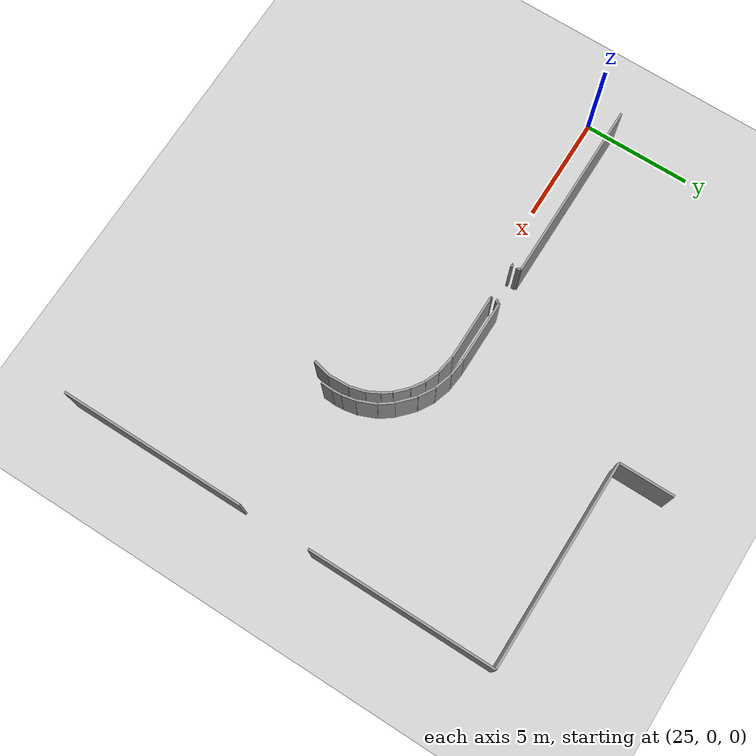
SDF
<sdf version="1.6">
 <world name="default">
  <model name="ground_plane">
   <static>1</static>
   <link name="link">
    <collision name="collision">
     <geometry><plane><normal>0 0 1</normal><size>100 100</size></plane></geometry>
     <surface><friction><ode><mu>100</mu><mu2>50</mu2></ode></friction></surface>
    </collision>
    <visual name="visual">
     <cast_shadows>0</cast_shadows>
     <geometry><plane><normal>0 0 1</normal><size>100 100</size></plane></geometry>
     <material>
      <script><uri>file://media/materials/scripts/gazebo.material</uri><name>Gazebo/Grey</name></script>
     </material>
    </visual>
   </link>
  </model>
  <model name="0510032258_A_40_1_105">
   <static>1</static>
   <link name="Wall_198">
    <collision name="Wall_198_Collision">
     <geometry><box><size>0.0396381746112 0.1 2.5</size></box></geometry>
     <pose>0.0198190873056 0 1.25 0 0 0</pose>
    </collision>
    <visual name="Wall_198_Visual">
     <pose>0.0198190873056 0 1.25 0 0 0</pose>
     <geometry><box><size>0.0396381746112 0.1 2.5</size></box></geometry>
     <material>
      <script><uri>file://media/materials/scripts/gazebo.material</uri><name>Gazebo/Grey</name></script>
      <ambient>1 1 1 1</ambient>
     </material>
    </visual>
    <pose>81.3173340787 -12.3962038825 0 0 0 1.57079632679</pose>
   </link>
   <link name="Wall_199">
    <collision name="Wall_199_Collision">
     <geometry><box><size>0.122852932209 0.1 2.5</size></box></geometry>
     <pose>0.0614264661043 0 1.25 0 0 0</pose>
    </collision>
    <visual name="Wall_199_Visual">
     <pose>0.0614264661043 0 1.25 0 0 0</pose>
     <geometry><box><size>0.122852932209 0.1 2.5</size></box></geometry>
     <material>
      <script><uri>file://media/materials/scripts/gazebo.material</uri><name>Gazebo/Grey</name></script>
      <ambient>1 1 1 1</ambient>
     </material>
    </visual>
    <pose>81.3173340787 -12.3565657079 0 0 0 0.0</pose>
   </link>
   <link name="Wall_200">
    <collision name="Wall_200_Collision">
     <geometry><box><size>0.0659365789206 0.1 2.5</size></box></geometry>
     <pose>0.0329682894603 0 1.25 0 0 0</pose>
    </collision>
    <visual name="Wall_200_Visual">
     <pose>0.0329682894603 0 1.25 0 0 0</pose>
     <geometry><box><size>0.0659365789206 0.1 2.5</size></box></geometry>
     <material>
      <script><uri>file://media/materials/scripts/gazebo.material</uri><name>Gazebo/Grey</name></script>
      <ambient>1 1 1 1</ambient>
     </material>
    </visual>
    <pose>82.9954771826 -12.3565657079 0 0 0 0.0</pose>
   </link>
   <link name="Wall_201">
    <collision name="Wall_201_Collision">
     <geometry><box><size>0.0228681776603 0.1 2.5</size></box></geometry>
     <pose>0.0114340888302 0 1.25 0 0 0</pose>
    </collision>
    <visual name="Wall_201_Visual">
     <pose>0.0114340888302 0 1.25 0 0 0</pose>
     <geometry><box><size>0.0228681776603 0.1 2.5</size></box></geometry>
     <material>
      <script><uri>file://media/materials/scripts/gazebo.material</uri><name>Gazebo/Grey</name></script>
      <ambient>1 1 1 1</ambient>
     </material>
    </visual>
    <pose>83.0614137616 -12.3565657079 0 0 0 -1.57079632679</pose>
   </link>
   <link name="Wall_202">
    <collision name="Wall_202_Collision">
     <geometry><box><size>3.04464376461 0.1 2.5</size></box></geometry>
     <pose>1.52232188231 0 1.25 0 0 0</pose>
    </collision>
    <visual name="Wall_202_Visual">
     <pose>1.52232188231 0 1.25 0 0 0</pose>
     <geometry><box><size>3.04464376461 0.1 2.5</size></box></geometry>
     <material>
      <script><uri>file://media/materials/scripts/gazebo.material</uri><name>Gazebo/Grey</name></script>
      <ambient>1 1 1 1</ambient>
     </material>
    </visual>
    <pose>83.0614137616 -12.3794338856 0 0 0 0.0</pose>
   </link>
   <link name="Wall_203">
    <collision name="Wall_203_Collision">
     <geometry><box><size>0.848187051584 0.1 2.5</size></box></geometry>
     <pose>0.424093525792 0 1.25 0 0 0</pose>
    </collision>
    <visual name="Wall_203_Visual">
     <pose>0.424093525792 0 1.25 0 0 0</pose>
     <geometry><box><size>0.848187051584 0.1 2.5</size></box></geometry>
     <material>
      <script><uri>file://media/materials/scripts/gazebo.material</uri><name>Gazebo/Grey</name></script>
      <ambient>1 1 1 1</ambient>
     </material>
    </visual>
    <pose>86.1060575262 -12.3794338856 0 0 0 -0.16369583431</pose>
   </link>
   <link name="Wall_204">
    <collision name="Wall_204_Collision">
     <geometry><box><size>0.665314799726 0.1 2.5</size></box></geometry>
     <pose>0.332657399863 0 1.25 0 0 0</pose>
    </collision>
    <visual name="Wall_204_Visual">
     <pose>0.332657399863 0 1.25 0 0 0</pose>
     <geometry><box><size>0.665314799726 0.1 2.5</size></box></geometry>
     <material>
      <script><uri>file://media/materials/scripts/gazebo.material</uri><name>Gazebo/Grey</name></script>
      <ambient>1 1 1 1</ambient>
     </material>
    </visual>
    <pose>86.9429057831 -12.517659315 0 0 0 -0.377031337024</pose>
   </link>
   <link name="Wall_205">
    <collision name="Wall_205_Collision">
     <geometry><box><size>0.669924329354 0.1 2.5</size></box></geometry>
     <pose>0.334962164677 0 1.25 0 0 0</pose>
    </collision>
    <visual name="Wall_205_Visual">
     <pose>0.334962164677 0 1.25 0 0 0</pose>
     <geometry><box><size>0.669924329354 0.1 2.5</size></box></geometry>
     <material>
      <script><uri>file://media/materials/scripts/gazebo.material</uri><name>Gazebo/Grey</name></script>
      <ambient>1 1 1 1</ambient>
     </material>
    </visual>
    <pose>87.5614899888 -12.7626029068 0 0 0 -0.571907202431</pose>
   </link>
   <link name="Wall_206">
    <collision name="Wall_206_Collision">
     <geometry><box><size>0.737215126246 0.1 2.5</size></box></geometry>
     <pose>0.368607563123 0 1.25 0 0 0</pose>
    </collision>
    <visual name="Wall_206_Visual">
     <pose>0.368607563123 0 1.25 0 0 0</pose>
     <geometry><box><size>0.737215126246 0.1 2.5</size></box></geometry>
     <material>
      <script><uri>file://media/materials/scripts/gazebo.material</uri><name>Gazebo/Grey</name></script>
      <ambient>1 1 1 1</ambient>
     </material>
    </visual>
    <pose>88.1248094319 -13.1251905681 0 0 0 -0.767240500448</pose>
   </link>
   <link name="Wall_207">
    <collision name="Wall_207_Collision">
     <geometry><box><size>0.49043041682 0.1 2.5</size></box></geometry>
     <pose>0.24521520841 0 1.25 0 0 0</pose>
    </collision>
    <visual name="Wall_207_Visual">
     <pose>0.24521520841 0 1.25 0 0 0</pose>
     <geometry><box><size>0.49043041682 0.1 2.5</size></box></geometry>
     <material>
      <script><uri>file://media/materials/scripts/gazebo.material</uri><name>Gazebo/Grey</name></script>
      <ambient>1 1 1 1</ambient>
     </material>
    </visual>
    <pose>88.655478199 -13.636929566 0 0 0 -0.968495638966</pose>
   </link>
   <link name="Wall_208">
    <collision name="Wall_208_Collision">
     <geometry><box><size>0.621674786323 0.1 2.5</size></box></geometry>
     <pose>0.310837393162 0 1.25 0 0 0</pose>
    </collision>
    <visual name="Wall_208_Visual">
     <pose>0.310837393162 0 1.25 0 0 0</pose>
     <geometry><box><size>0.621674786323 0.1 2.5</size></box></geometry>
     <material>
      <script><uri>file://media/materials/scripts/gazebo.material</uri><name>Gazebo/Grey</name></script>
      <ambient>1 1 1 1</ambient>
     </material>
    </visual>
    <pose>88.9333265576 -14.0410610834 0 0 0 -1.08448142427</pose>
   </link>
   <link name="Wall_209">
    <collision name="Wall_209_Collision">
     <geometry><box><size>0.724701763586 0.1 2.5</size></box></geometry>
     <pose>0.362350881793 0 1.25 0 0 0</pose>
    </collision>
    <visual name="Wall_209_Visual">
     <pose>0.362350881793 0 1.25 0 0 0</pose>
     <geometry><box><size>0.724701763586 0.1 2.5</size></box></geometry>
     <material>
      <script><uri>file://media/materials/scripts/gazebo.material</uri><name>Gazebo/Grey</name></script>
      <ambient>1 1 1 1</ambient>
     </material>
    </visual>
    <pose>89.2238794593 -14.5906596199 0 0 0 -1.31523042426</pose>
   </link>
   <link name="Wall_210">
    <collision name="Wall_210_Collision">
     <geometry><box><size>0.967048927874 0.1 2.5</size></box></geometry>
     <pose>0.483524463937 0 1.25 0 0 0</pose>
    </collision>
    <visual name="Wall_210_Visual">
     <pose>0.483524463937 0 1.25 0 0 0</pose>
     <geometry><box><size>0.967048927874 0.1 2.5</size></box></geometry>
     <material>
      <script><uri>file://media/materials/scripts/gazebo.material</uri><name>Gazebo/Grey</name></script>
      <ambient>1 1 1 1</ambient>
     </material>
    </visual>
    <pose>89.4070789714 -15.291823356 0 0 0 -1.53163676072</pose>
   </link>
   <link name="Wall_211">
    <collision name="Wall_211_Collision">
     <geometry><box><size>0.818169678559 0.1 2.5</size></box></geometry>
     <pose>0.409084839279 0 1.25 0 0 0</pose>
    </collision>
    <visual name="Wall_211_Visual">
     <pose>0.409084839279 0 1.25 0 0 0</pose>
     <geometry><box><size>0.818169678559 0.1 2.5</size></box></geometry>
     <material>
      <script><uri>file://media/materials/scripts/gazebo.material</uri><name>Gazebo/Grey</name></script>
      <ambient>1 1 1 1</ambient>
     </material>
    </visual>
    <pose>89.44493851 -16.2581309076 0 0 0 -1.80443880273</pose>
   </link>
   <link name="Wall_239">
    <collision name="Wall_239_Collision">
     <geometry><box><size>2.54789612766 0.1 2.5</size></box></geometry>
     <pose>1.27394806383 0 1.25 0 0 0</pose>
    </collision>
    <visual name="Wall_239_Visual">
     <pose>1.27394806383 0 1.25 0 0 0</pose>
     <geometry><box><size>2.54789612766 0.1 2.5</size></box></geometry>
     <material>
      <script><uri>file://media/materials/scripts/gazebo.material</uri><name>Gazebo/Grey</name></script>
      <ambient>1 1 1 1</ambient>
     </material>
    </visual>
    <pose>86.2571145442 -1.86401057018 0 0 0 -1.57079632679</pose>
   </link>
   <link name="Wall_240">
    <collision name="Wall_240_Collision">
     <geometry><box><size>9.5442880374 0.1 2.5</size></box></geometry>
     <pose>4.7721440187 0 1.25 0 0 0</pose>
    </collision>
    <visual name="Wall_240_Visual">
     <pose>4.7721440187 0 1.25 0 0 0</pose>
     <geometry><box><size>9.5442880374 0.1 2.5</size></box></geometry>
     <material>
      <script><uri>file://media/materials/scripts/gazebo.material</uri><name>Gazebo/Grey</name></script>
      <ambient>1 1 1 1</ambient>
     </material>
    </visual>
    <pose>86.2571145442 -4.41190669784 0 0 0 0.0</pose>
   </link>
   <link name="Wall_241">
    <collision name="Wall_241_Collision">
     <geometry><box><size>8.63731070231 0.1 2.5</size></box></geometry>
     <pose>4.31865535115 0 1.25 0 0 0</pose>
    </collision>
    <visual name="Wall_241_Visual">
     <pose>4.31865535115 0 1.25 0 0 0</pose>
     <geometry><box><size>8.63731070231 0.1 2.5</size></box></geometry>
     <material>
      <script><uri>file://media/materials/scripts/gazebo.material</uri><name>Gazebo/Grey</name></script>
      <ambient>1 1 1 1</ambient>
     </material>
    </visual>
    <pose>95.8014025816 -4.41190669784 0 0 0 -1.57079632679</pose>
   </link>
   <link name="Wall_242">
    <collision name="Wall_242_Collision">
     <geometry><box><size>8.62066775079 0.1 2.5</size></box></geometry>
     <pose>4.31033387539 0 1.25 0 0 0</pose>
    </collision>
    <visual name="Wall_242_Visual">
     <pose>4.31033387539 0 1.25 0 0 0</pose>
     <geometry><box><size>8.62066775079 0.1 2.5</size></box></geometry>
     <material>
      <script><uri>file://media/materials/scripts/gazebo.material</uri><name>Gazebo/Grey</name></script>
      <ambient>1 1 1 1</ambient>
     </material>
    </visual>
    <pose>95.8014025816 -16.306535217 0 0 0 -1.57079632679</pose>
   </link>
   <link name="Wall_263">
    <collision name="Wall_263_Collision">
     <geometry><box><size>0.562883081845 0.1 2.5</size></box></geometry>
     <pose>0.281441540922 0 1.25 0 0 0</pose>
    </collision>
    <visual name="Wall_263_Visual">
     <pose>0.281441540922 0 1.25 0 0 0</pose>
     <geometry><box><size>0.562883081845 0.1 2.5</size></box></geometry>
     <material>
      <script><uri>file://media/materials/scripts/gazebo.material</uri><name>Gazebo/Grey</name></script>
      <ambient>1 1 1 1</ambient>
     </material>
    </visual>
    <pose>89.8572009351 -16.3238133957 0 0 0 1.52066886365</pose>
   </link>
   <link name="Wall_264">
    <collision name="Wall_264_Collision">
     <geometry><box><size>0.415507575344 0.1 2.5</size></box></geometry>
     <pose>0.207753787672 0 1.25 0 0 0</pose>
    </collision>
    <visual name="Wall_264_Visual">
     <pose>0.207753787672 0 1.25 0 0 0</pose>
     <geometry><box><size>0.415507575344 0.1 2.5</size></box></geometry>
     <material>
      <script><uri>file://media/materials/scripts/gazebo.material</uri><name>Gazebo/Grey</name></script>
      <ambient>1 1 1 1</ambient>
     </material>
    </visual>
    <pose>89.8854050208 -15.7616373615 0 0 0 1.63872719235</pose>
   </link>
   <link name="Wall_265">
    <collision name="Wall_265_Collision">
     <geometry><box><size>0.62453147429 0.1 2.5</size></box></geometry>
     <pose>0.312265737145 0 1.25 0 0 0</pose>
    </collision>
    <visual name="Wall_265_Visual">
     <pose>0.312265737145 0 1.25 0 0 0</pose>
     <geometry><box><size>0.62453147429 0.1 2.5</size></box></geometry>
     <material>
      <script><uri>file://media/materials/scripts/gazebo.material</uri><name>Gazebo/Grey</name></script>
      <ambient>1 1 1 1</ambient>
     </material>
    </visual>
    <pose>89.8572009351 -15.3470881187 0 0 0 1.76009312097</pose>
   </link>
   <link name="Wall_266">
    <collision name="Wall_266_Collision">
     <geometry><box><size>0.896571275425 0.1 2.5</size></box></geometry>
     <pose>0.448285637712 0 1.25 0 0 0</pose>
    </collision>
    <visual name="Wall_266_Visual">
     <pose>0.448285637712 0 1.25 0 0 0</pose>
     <geometry><box><size>0.896571275425 0.1 2.5</size></box></geometry>
     <material>
      <script><uri>file://media/materials/scripts/gazebo.material</uri><name>Gazebo/Grey</name></script>
      <ambient>1 1 1 1</ambient>
     </material>
    </visual>
    <pose>89.739683911 -14.7337127757 0 0 0 1.9604861729</pose>
   </link>
   <link name="Wall_267">
    <collision name="Wall_267_Collision">
     <geometry><box><size>0.706628071625 0.1 2.5</size></box></geometry>
     <pose>0.353314035812 0 1.25 0 0 0</pose>
    </collision>
    <visual name="Wall_267_Visual">
     <pose>0.353314035812 0 1.25 0 0 0</pose>
     <geometry><box><size>0.706628071625 0.1 2.5</size></box></geometry>
     <material>
      <script><uri>file://media/materials/scripts/gazebo.material</uri><name>Gazebo/Grey</name></script>
      <ambient>1 1 1 1</ambient>
     </material>
    </visual>
    <pose>89.3990751093 -13.9043601992 0 0 0 2.21627513887</pose>
   </link>
   <link name="Wall_268">
    <collision name="Wall_268_Collision">
     <geometry><box><size>0.964578087495 0.1 2.5</size></box></geometry>
     <pose>0.482289043748 0 1.25 0 0 0</pose>
    </collision>
    <visual name="Wall_268_Visual">
     <pose>0.482289043748 0 1.25 0 0 0</pose>
     <geometry><box><size>0.964578087495 0.1 2.5</size></box></geometry>
     <material>
      <script><uri>file://media/materials/scripts/gazebo.material</uri><name>Gazebo/Grey</name></script>
      <ambient>1 1 1 1</ambient>
     </material>
    </visual>
    <pose>88.9739810956 -13.3398973473 0 0 0 2.39541381384</pose>
   </link>
   <link name="Wall_269">
    <collision name="Wall_269_Collision">
     <geometry><box><size>0.809292481693 0.1 2.5</size></box></geometry>
     <pose>0.404646240846 0 1.25 0 0 0</pose>
    </collision>
    <visual name="Wall_269_Visual">
     <pose>0.404646240846 0 1.25 0 0 0</pose>
     <geometry><box><size>0.809292481693 0.1 2.5</size></box></geometry>
     <material>
      <script><uri>file://media/materials/scripts/gazebo.material</uri><name>Gazebo/Grey</name></script>
      <ambient>1 1 1 1</ambient>
     </material>
    </visual>
    <pose>88.2657028153 -12.6851051936 0 0 0 2.61091922349</pose>
   </link>
   <link name="Wall_270">
    <collision name="Wall_270_Collision">
     <geometry><box><size>0.826786338416 0.1 2.5</size></box></geometry>
     <pose>0.413393169208 0 1.25 0 0 0</pose>
    </collision>
    <visual name="Wall_270_Visual">
     <pose>0.413393169208 0 1.25 0 0 0</pose>
     <geometry><box><size>0.826786338416 0.1 2.5</size></box></geometry>
     <material>
      <script><uri>file://media/materials/scripts/gazebo.material</uri><name>Gazebo/Grey</name></script>
      <ambient>1 1 1 1</ambient>
     </material>
    </visual>
    <pose>87.567715215 -12.2755107226 0 0 0 2.8353436032</pose>
   </link>
   <link name="Wall_271">
    <collision name="Wall_271_Collision">
     <geometry><box><size>0.825198737661 0.1 2.5</size></box></geometry>
     <pose>0.412599368831 0 1.25 0 0 0</pose>
    </collision>
    <visual name="Wall_271_Visual">
     <pose>0.412599368831 0 1.25 0 0 0</pose>
     <geometry><box><size>0.825198737661 0.1 2.5</size></box></geometry>
     <material>
      <script><uri>file://media/materials/scripts/gazebo.material</uri><name>Gazebo/Grey</name></script>
      <ambient>1 1 1 1</ambient>
     </material>
    </visual>
    <pose>86.7793983128 -12.0262475861 0 0 0 3.04181676578</pose>
   </link>
   <link name="Wall_272">
    <collision name="Wall_272_Collision">
     <geometry><box><size>2.88024697632 0.1 2.5</size></box></geometry>
     <pose>1.44012348816 0 1.25 0 0 0</pose>
    </collision>
    <visual name="Wall_272_Visual">
     <pose>1.44012348816 0 1.25 0 0 0</pose>
     <geometry><box><size>2.88024697632 0.1 2.5</size></box></geometry>
     <material>
      <script><uri>file://media/materials/scripts/gazebo.material</uri><name>Gazebo/Grey</name></script>
      <ambient>1 1 1 1</ambient>
     </material>
    </visual>
    <pose>85.9583036894 -11.944049192 0 0 0 3.14159265359</pose>
   </link>
   <link name="Wall_273">
    <collision name="Wall_273_Collision">
     <geometry><box><size>0.157917471288 0.1 2.5</size></box></geometry>
     <pose>0.0789587356439 0 1.25 0 0 0</pose>
    </collision>
    <visual name="Wall_273_Visual">
     <pose>0.0789587356439 0 1.25 0 0 0</pose>
     <geometry><box><size>0.157917471288 0.1 2.5</size></box></geometry>
     <material>
      <script><uri>file://media/materials/scripts/gazebo.material</uri><name>Gazebo/Grey</name></script>
      <ambient>1 1 1 1</ambient>
     </material>
    </visual>
    <pose>83.0780567131 -11.944049192 0 0 0 -1.57079632679</pose>
   </link>
   <link name="Wall_274">
    <collision name="Wall_274_Collision">
     <geometry><box><size>0.107353389572 0.1 2.5</size></box></geometry>
     <pose>0.053676694786 0 1.25 0 0 0</pose>
    </collision>
    <visual name="Wall_274_Visual">
     <pose>0.053676694786 0 1.25 0 0 0</pose>
     <geometry><box><size>0.107353389572 0.1 2.5</size></box></geometry>
     <material>
      <script><uri>file://media/materials/scripts/gazebo.material</uri><name>Gazebo/Grey</name></script>
      <ambient>1 1 1 1</ambient>
     </material>
    </visual>
    <pose>83.0780567131 -12.1019666633 0 0 0 3.14159265359</pose>
   </link>
   <link name="Wall_275">
    <collision name="Wall_275_Collision">
     <geometry><box><size>0.0627604431345 0.1 2.5</size></box></geometry>
     <pose>0.0313802215672 0 1.25 0 0 0</pose>
    </collision>
    <visual name="Wall_275_Visual">
     <pose>0.0313802215672 0 1.25 0 0 0</pose>
     <geometry><box><size>0.0627604431345 0.1 2.5</size></box></geometry>
     <material>
      <script><uri>file://media/materials/scripts/gazebo.material</uri><name>Gazebo/Grey</name></script>
      <ambient>1 1 1 1</ambient>
     </material>
    </visual>
    <pose>81.4099501982 -12.1019666633 0 0 0 3.14159265359</pose>
   </link>
   <link name="Wall_276">
    <collision name="Wall_276_Collision">
     <geometry><box><size>0.152200426873 0.1 2.5</size></box></geometry>
     <pose>0.0761002134363 0 1.25 0 0 0</pose>
    </collision>
    <visual name="Wall_276_Visual">
     <pose>0.0761002134363 0 1.25 0 0 0</pose>
     <geometry><box><size>0.152200426873 0.1 2.5</size></box></geometry>
     <material>
      <script><uri>file://media/materials/scripts/gazebo.material</uri><name>Gazebo/Grey</name></script>
      <ambient>1 1 1 1</ambient>
     </material>
    </visual>
    <pose>81.3471897551 -12.1019666633 0 0 0 1.57079632679</pose>
   </link>
   <link name="Wall_277">
    <collision name="Wall_277_Collision">
     <geometry><box><size>8.49451249241 0.1 2.5</size></box></geometry>
     <pose>4.24725624621 0 1.25 0 0 0</pose>
    </collision>
    <visual name="Wall_277_Visual">
     <pose>4.24725624621 0 1.25 0 0 0</pose>
     <geometry><box><size>8.49451249241 0.1 2.5</size></box></geometry>
     <material>
      <script><uri>file://media/materials/scripts/gazebo.material</uri><name>Gazebo/Grey</name></script>
      <ambient>1 1 1 1</ambient>
     </material>
    </visual>
    <pose>81.3471897551 -11.9497662364 0 0 0 -3.14114396827</pose>
   </link>
   <pose>-47.9 13.1512145543 0 0 0 0</pose>
  </model>
 </world>
</sdf>
